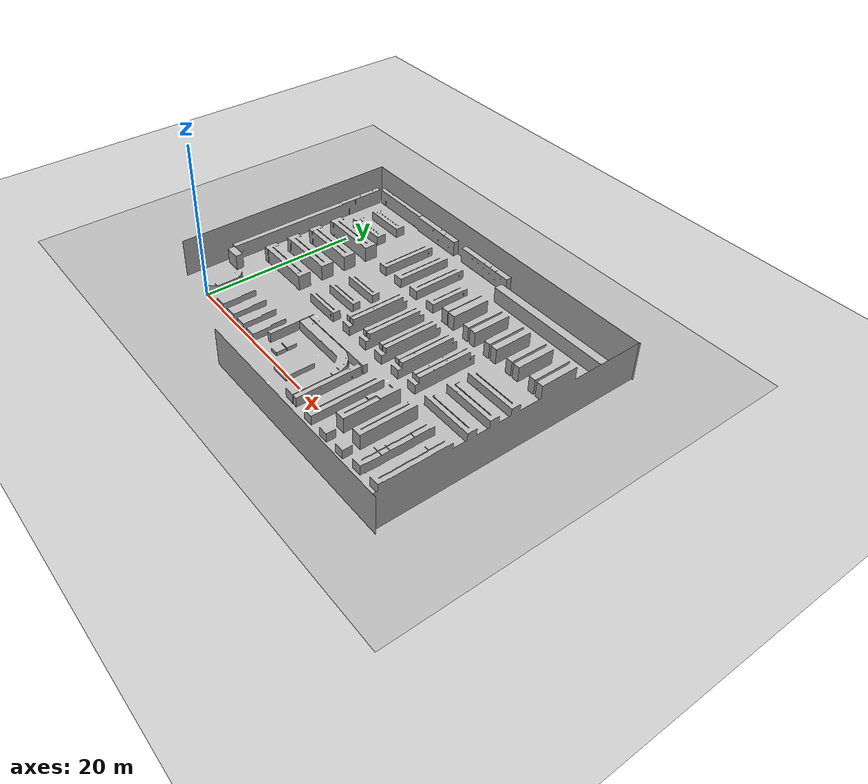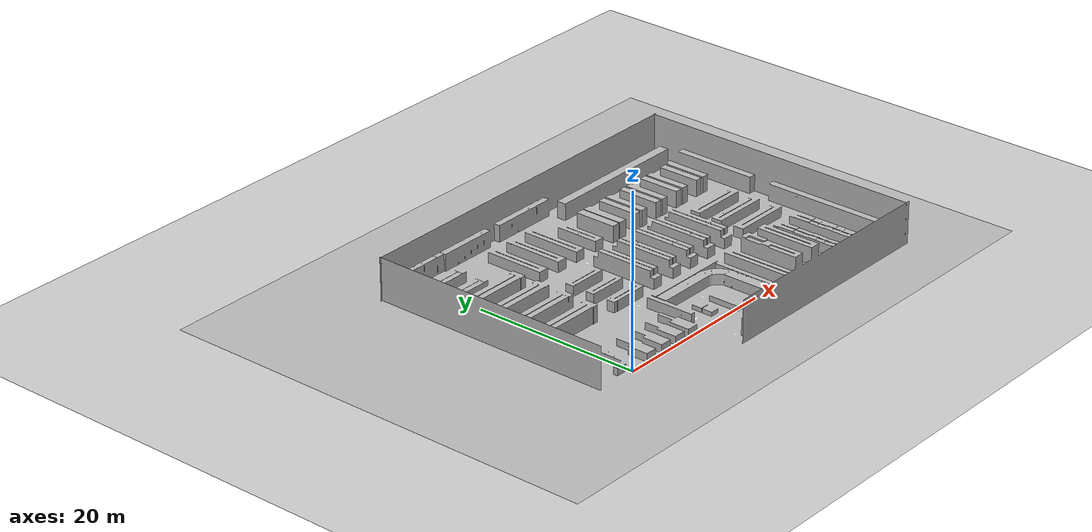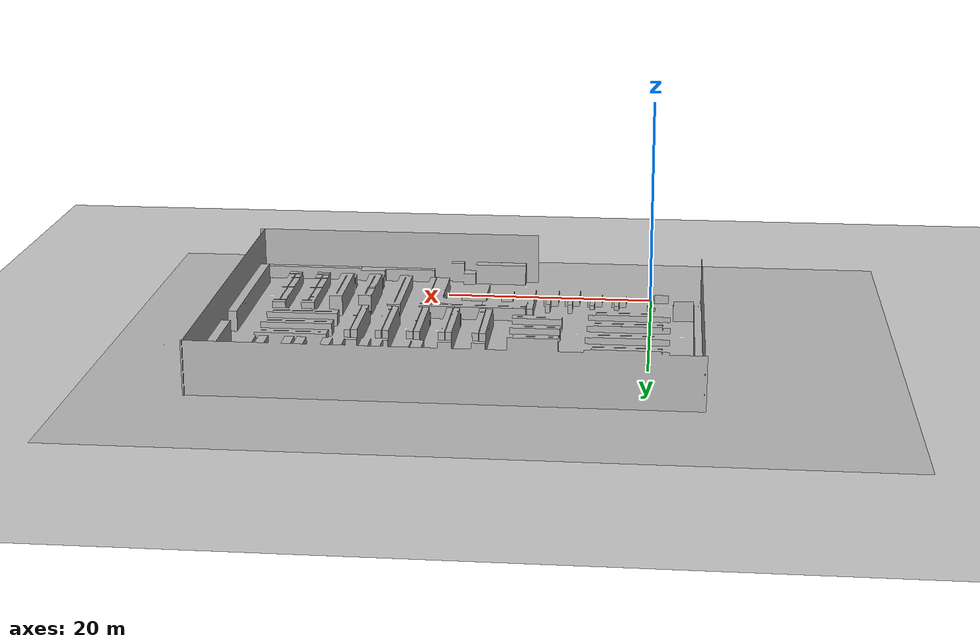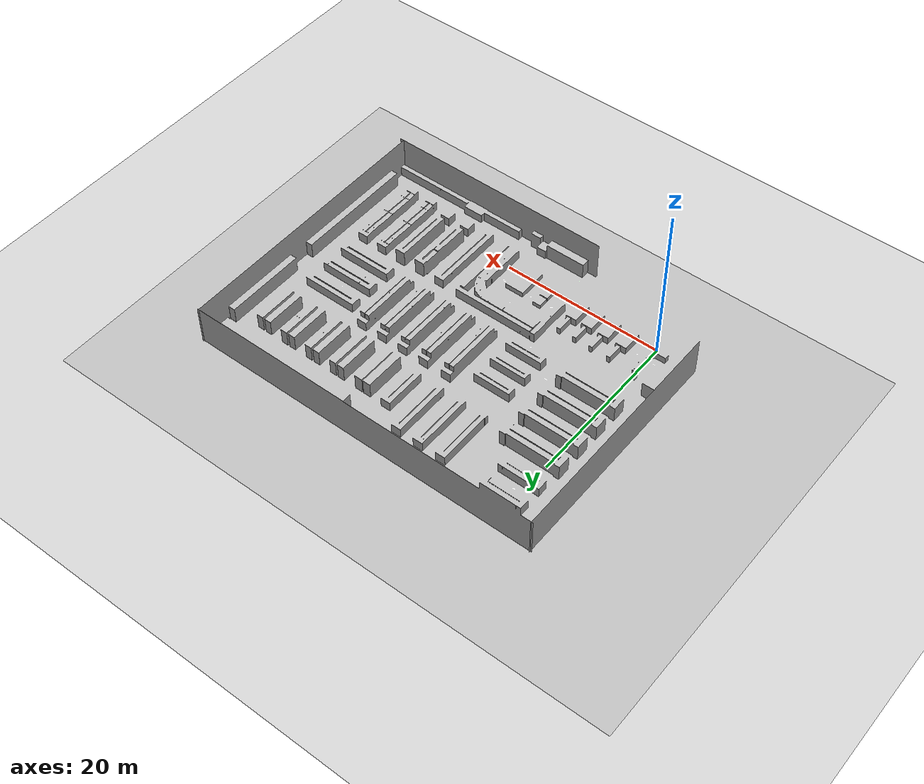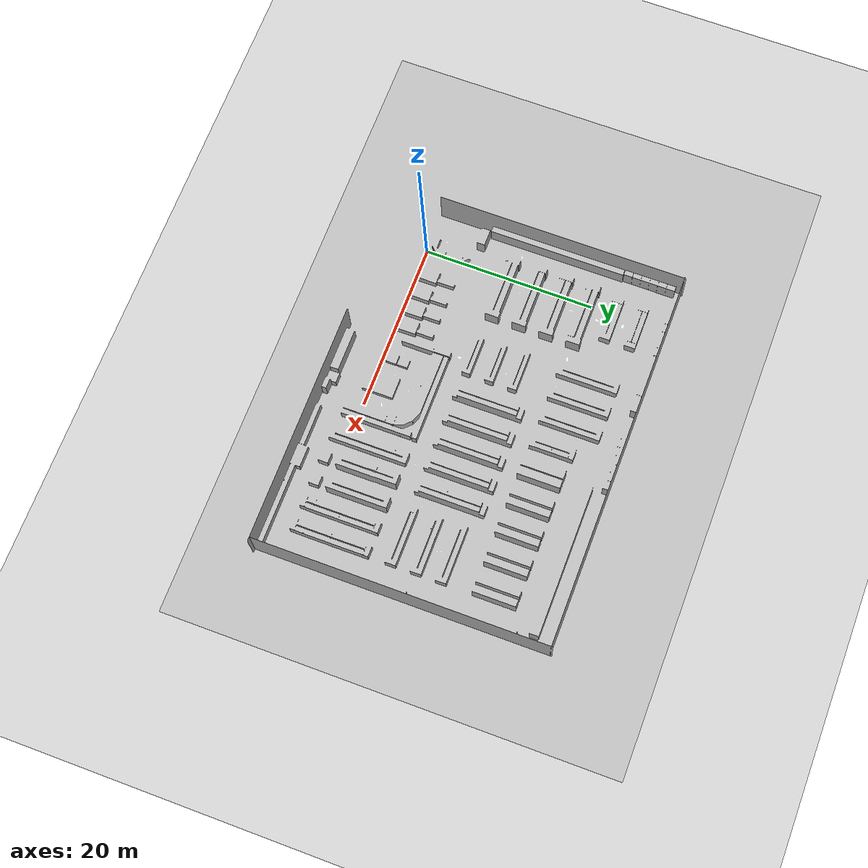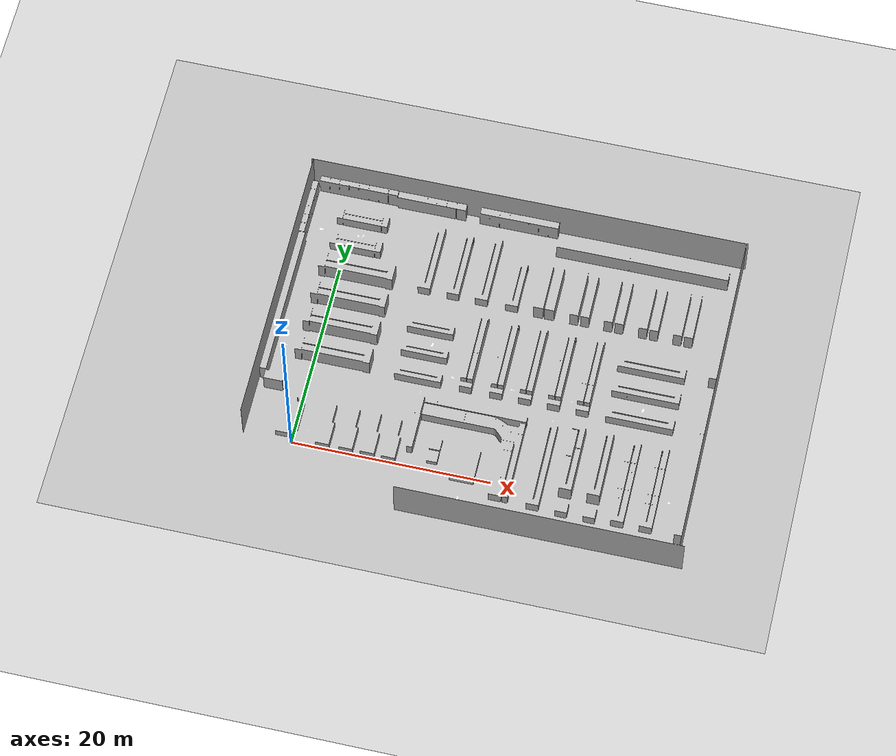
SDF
<?xml version="1.0" ?>
<sdf version='1.4'>
  <world name='default'>
    <physics type='ode'>
      <gravity>0 0 -9.81</gravity>
      <ode>
        <solver>
          <type>quick</type>
          <iters>20</iters>
          <sor>1.0</sor>
        </solver>
        <constraints>
          <cfm>0.0</cfm>
          <erp>0.2</erp>
          <contact_max_correcting_vel>100.0</contact_max_correcting_vel>
          <contact_surface_layer>0.0</contact_surface_layer>
        </constraints>
      </ode>
      <real_time_update_rate>1000</real_time_update_rate>
      <max_step_size>0.001</max_step_size>
    </physics>

     <!-- A global light source -->
    <include>
      <uri>model://sun</uri>
    </include>

    <!-- A ground plane -->
    <include>
      <uri>model://ground_plane</uri>
    </include>

    <model name='hassloch'>
      <static>1</static>
      <link name='walls'>
      <pose>-5.0 -5.0 0.0 0.0 0.0 0.0</pose>
        <collision name='collision'>
          <geometry>
            <mesh>
              <uri>model://hassloch/meshes/HasslockModelMaterials.dae</uri>
            </mesh>
          </geometry>
          <max_contacts>10</max_contacts>
          <surface>
            <bounce/>
            <friction>
              <ode/>
            </friction>
            <contact>
              <ode/>
            </contact>
          </surface>
        </collision>
        <visual name='visual'>
          <geometry>
            <mesh>
              <uri>model://hassloch/meshes/HasslockModelMaterials.dae</uri>
            </mesh>
          </geometry>
          <cast_shadows>0</cast_shadows>
        </visual>
        <velocity_decay>
          <linear>0.000000</linear>
          <angular>0.000000</angular>
        </velocity_decay>
        <self_collide>0</self_collide>
        <kinematic>0</kinematic>
        <gravity>1</gravity>
      </link>
    </model>
  </world>
</sdf>
